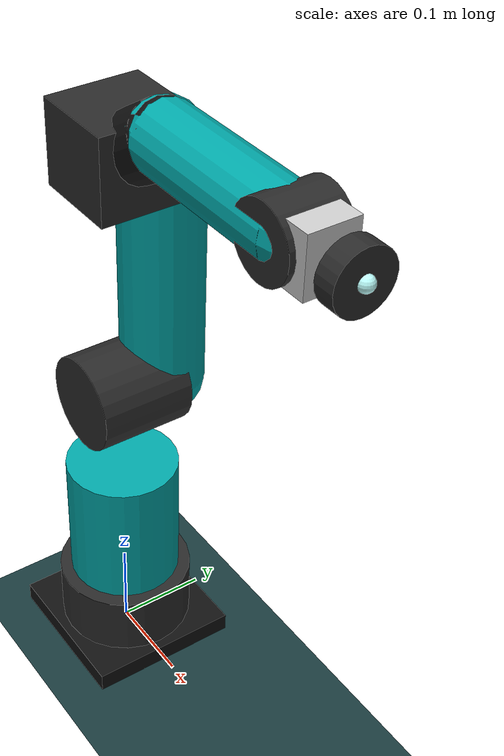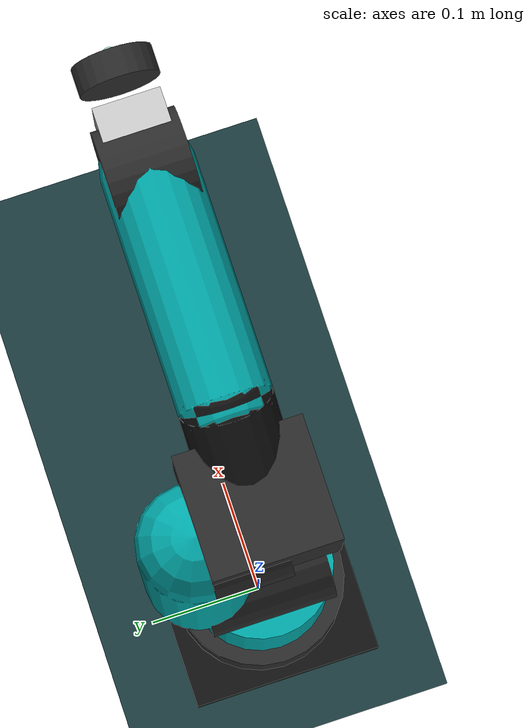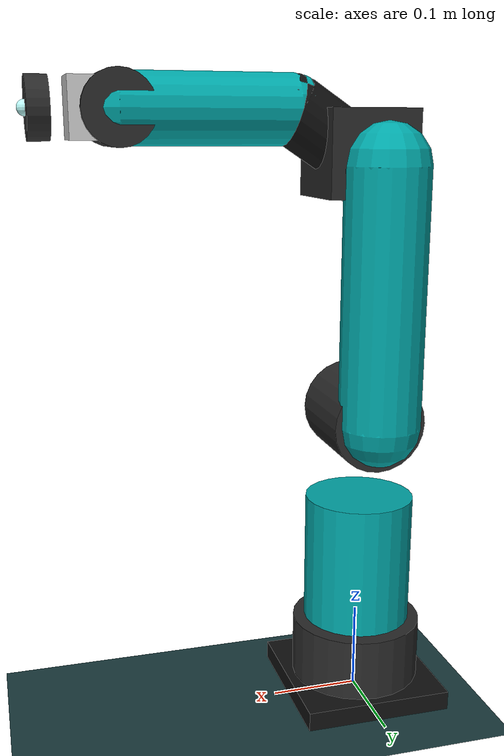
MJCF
<mujoco model="horst600_g2_pt1">
  <compiler angle="radian" autolimits="true"/>
  <option timestep="0.002" integrator="implicitfast"/>
  <visual><global azimuth="135" elevation="-22" fovy="42"/></visual>
  <worldbody>
    <geom name="boden" type="plane" size="2 2 0.1" rgba="0.10 0.23 0.24 1"/>

    <body name="horst_basis" pos="0 0 0" euler="0 0 0" gravcomp="0">
      <geom type="box" size="0.085 0.085 0.011" pos="0 0 0.011" rgba="0.067 0.067 0.067 1" mass="1.2"/>
      <geom type="cylinder" size="0.075 0.037" pos="0 0 0.056" rgba="0.165 0.165 0.165 1" mass="4.5"/>
      <body name="link_1" pos="0 0 0.0925">
        <joint name="j1" axis="0 0 1" range="-2.9845130209 2.9845130209" damping="6" armature="0.08" frictionloss="0.05"/>
        <geom type="cylinder" size="0.062 0.075" pos="0 0 0.078" rgba="0 0.655 0.659 1" mass="2.6"/>
        <geom type="cylinder" size="0.052 0.052" pos="0 0.004 0.251" euler="1.5708 0 0" rgba="0.165 0.165 0.165 1" mass="0.9"/>
        <body name="link_2" pos="0 0 0.251">
          <joint name="j2" axis="0 1 0" range="-1.745329252 2.1293016874" damping="6" armature="0.08" frictionloss="0.05"/>
          <geom type="capsule" fromto="0 0.052 0  0 0.052 0.274" size="0.045" rgba="0 0.655 0.659 1" mass="2.2"/>
          <geom type="cylinder" size="0.046 0.03" pos="0 0.02 0.274" euler="1.5708 0 0" rgba="0.165 0.165 0.165 1" mass="0.4"/>
          <body name="link_3" pos="0 0 0.274">
            <joint name="j3" axis="0 1 0" range="-3.6651914292 1.2566370614" damping="4" armature="0.06" frictionloss="0.05"/>
            <geom type="box" size="0.048 0.05 0.045" pos="0.012 0 0.012" rgba="0.165 0.165 0.165 1" mass="1.4"/>
            <geom type="capsule" fromto="0 0 0  0.0855 0 0.0555" size="0.036" rgba="0.067 0.067 0.067 1" mass="0.4"/>
            <body name="link_4" pos="0.0855 0 0.0555">
              <joint name="j4" axis="1 0 0" range="-3.0717794835 3.0717794835" damping="1.2" armature="0.02" frictionloss="0.05"/>
              <geom type="capsule" fromto="0 0 0  0.1817 0 0" size="0.036" rgba="0 0.655 0.659 1" mass="1.0"/>
              <geom type="cylinder" size="0.037 0.032" pos="0.1817 0 0" euler="1.5708 0 0" rgba="0.165 0.165 0.165 1" mass="0.35"/>
              <body name="link_5" pos="0.1817 0 0">
                <joint name="j5" axis="0 1 0" range="-2.7576202182 2.7576202182" damping="1" armature="0.02" frictionloss="0.05"/>
                <geom type="box" size="0.03 0.026 0.03" pos="0.018 0 0" rgba="0.8 0.8 0.8 1" mass="0.45"/>
                <body name="link_6" pos="0.0642 0 0">
                  <joint name="j6" axis="1 0 0" range="-5.235987756 5.235987756" damping="0.5" armature="0.01" frictionloss="0.05"/>
                  <geom type="cylinder" size="0.031 0.011" pos="0.011 0 0" euler="0 1.5708 0" rgba="0.165 0.165 0.165 1" mass="0.18"/>
                  <site name="tcp" pos="0.022 0 0" size="0.008" rgba="0.74 1 0.99 0.9"/>
                </body>
              </body>
            </body>
          </body>
        </body>
      </body>
    </body>
  </worldbody>
  <actuator>
    <position name="A1" joint="j1" kp="400" kv="40" forcerange="-150 150" ctrlrange="-2.9845130209 2.9845130209"/>
    <position name="A2" joint="j2" kp="400" kv="40" forcerange="-150 150" ctrlrange="-1.745329252 2.1293016874"/>
    <position name="A3" joint="j3" kp="250" kv="25" forcerange="-90 90" ctrlrange="-3.6651914292 1.2566370614"/>
    <position name="A4" joint="j4" kp="60" kv="6" forcerange="-28 28" ctrlrange="-3.0717794835 3.0717794835"/>
    <position name="A5" joint="j5" kp="50" kv="5" forcerange="-22 22" ctrlrange="-2.7576202182 2.7576202182"/>
    <position name="A6" joint="j6" kp="25" kv="2.5" forcerange="-12 12" ctrlrange="-5.235987756 5.235987756"/>
  </actuator>
</mujoco>
